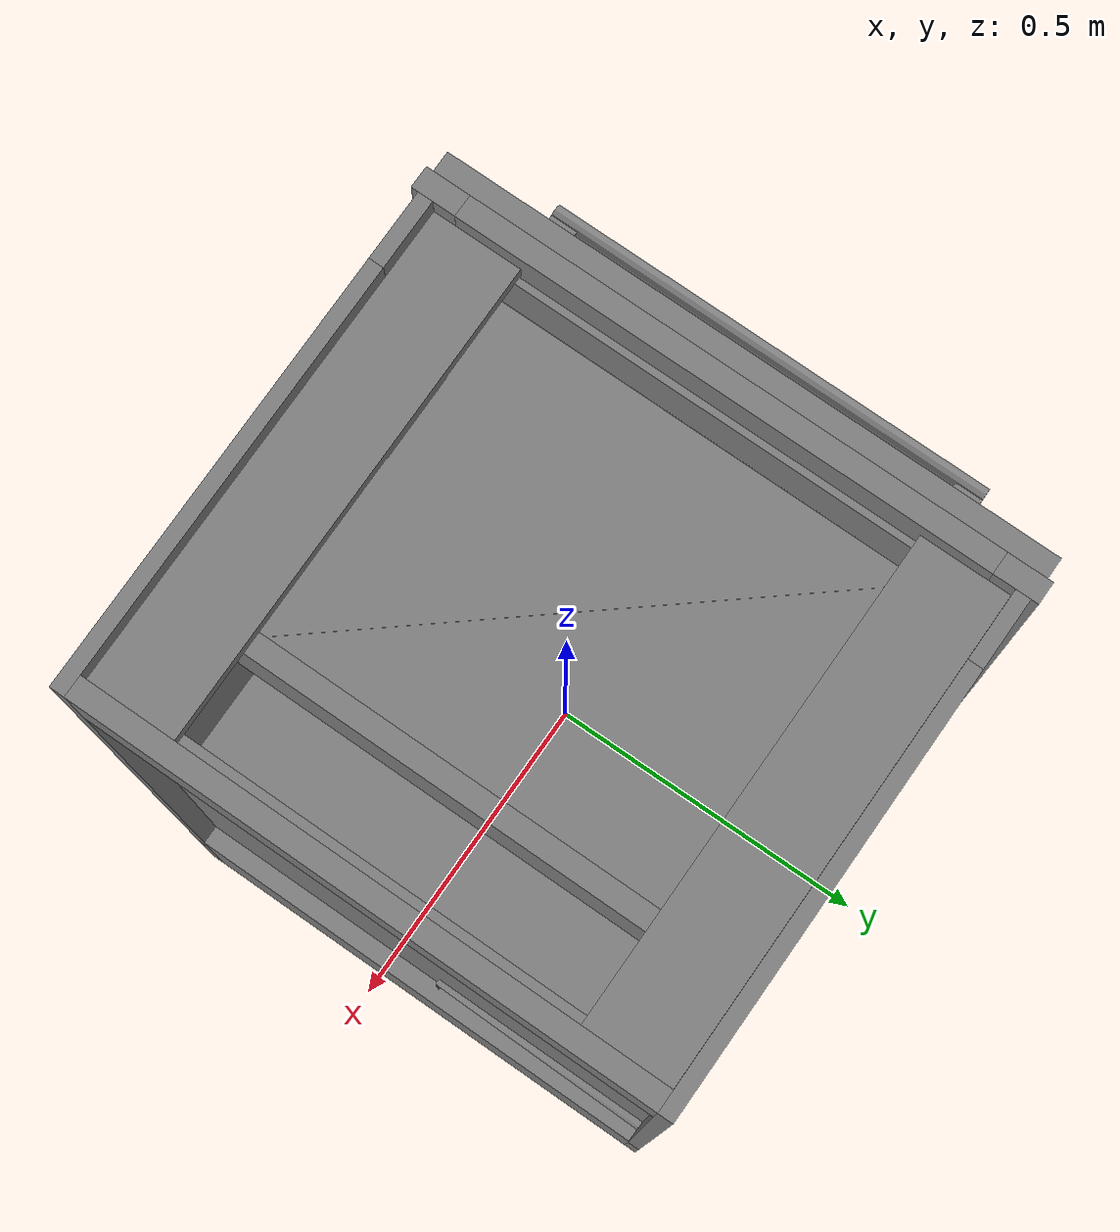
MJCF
<mujoco model="partnet_1700d057c9e0c88cc59350d819542ec7">
    <compiler angle="radian" />
    <size njmax="500" nconmax="100" />
    <asset>
        <mesh name="original-40" file="original-40.stl" />
        <mesh name="original-42" file="original-42.stl" />
        <mesh name="original-44" file="original-44.stl" />
        <mesh name="original-43" file="original-43.stl" />
        <mesh name="original-34" file="original-34.stl" />
        <mesh name="original-26" file="original-26.stl" />
        <mesh name="original-25" file="original-25.stl" />
        <mesh name="original-30" file="original-30.stl" />
        <mesh name="original-31" file="original-31.stl" />
        <mesh name="original-29" file="original-29.stl" />
        <mesh name="original-28" file="original-28.stl" />
        <mesh name="original-36" file="original-36.stl" />
        <mesh name="original-37" file="original-37.stl" />
        <mesh name="original-38" file="original-38.stl" />
        <mesh name="original-32" file="original-32.stl" />
        <mesh name="original-2" file="original-2.stl" />
        <mesh name="original-12" file="original-12.stl" />
        <mesh name="original-11" file="original-11.stl" />
        <mesh name="original-16" file="original-16.stl" />
        <mesh name="original-15" file="original-15.stl" />
        <mesh name="original-6" file="original-6.stl" />
        <mesh name="original-3" file="original-3.stl" />
        <mesh name="original-8" file="original-8.stl" />
        <mesh name="original-4" file="original-4.stl" />
        <mesh name="original-9" file="original-9.stl" />
        <mesh name="original-5" file="original-5.stl" />
        <mesh name="original-22" file="original-22.stl" />
        <mesh name="original-21" file="original-21.stl" />
        <mesh name="original-7" file="original-7.stl" />
        <mesh name="original-18" file="original-18.stl" />
        <mesh name="original-45" file="original-45.stl" />
        <mesh name="original-17" file="original-17.stl" />
        <mesh name="original-19" file="original-19.stl" />
        <mesh name="original-13" file="original-13.stl" />
        <mesh name="original-20" file="original-20.stl" />
    </asset>
    <worldbody>
    <body>
        <body name="object" >
        <geom quat="0.5 0.5 -0.5 -0.5" type="mesh" group="0" mesh="original-2" contype="0" conaffinity="0"/>
        <geom quat="0.5 0.5 -0.5 -0.5" type="mesh" group="0" mesh="original-12" contype="0" conaffinity="0"/>
        <geom quat="0.5 0.5 -0.5 -0.5" type="mesh" group="0" mesh="original-11" contype="0" conaffinity="0"/>
        <geom quat="0.5 0.5 -0.5 -0.5" type="mesh" group="0" mesh="original-16" contype="0" conaffinity="0"/>
        <geom quat="0.5 0.5 -0.5 -0.5" type="mesh" group="0" mesh="original-15" contype="0" conaffinity="0"/>
        <geom quat="0.5 0.5 -0.5 -0.5" type="mesh" group="0" mesh="original-6" contype="0" conaffinity="0"/>
        <geom quat="0.5 0.5 -0.5 -0.5" type="mesh" group="0" mesh="original-3" contype="0" conaffinity="0"/>
        <geom quat="0.5 0.5 -0.5 -0.5" type="mesh" group="0" mesh="original-8" contype="0" conaffinity="0"/>
        <geom quat="0.5 0.5 -0.5 -0.5" type="mesh" group="0" mesh="original-4" contype="0" conaffinity="0"/>
        <geom quat="0.5 0.5 -0.5 -0.5" type="mesh" group="0" mesh="original-9" contype="0" conaffinity="0"/>
        <geom quat="0.5 0.5 -0.5 -0.5" type="mesh" group="0" mesh="original-5" contype="0" conaffinity="0"/>
        <geom quat="0.5 0.5 -0.5 -0.5" type="mesh" group="0" mesh="original-22" contype="0" conaffinity="0"/>
        <geom quat="0.5 0.5 -0.5 -0.5" type="mesh" group="0" mesh="original-21" contype="0" conaffinity="0"/>
        <geom quat="0.5 0.5 -0.5 -0.5" type="mesh" group="0" mesh="original-7" contype="0" conaffinity="0"/>
        <geom quat="0.5 0.5 -0.5 -0.5" type="mesh" group="0" mesh="original-18" contype="0" conaffinity="0"/>
        <geom quat="0.5 0.5 -0.5 -0.5" type="mesh" group="0" mesh="original-45" contype="0" conaffinity="0"/>
        <geom quat="0.5 0.5 -0.5 -0.5" type="mesh" group="0" mesh="original-17" contype="0" conaffinity="0"/>
        <geom quat="0.5 0.5 -0.5 -0.5" type="mesh" group="0" mesh="original-19" contype="0" conaffinity="0"/>
        <geom quat="0.5 0.5 -0.5 -0.5" type="mesh" group="0" mesh="original-13" contype="0" conaffinity="0"/>
        <geom quat="0.5 0.5 -0.5 -0.5" type="mesh" group="0" mesh="original-20" contype="0" conaffinity="0"/>
        <body name="link_1" pos="-0.372191 -0.443201 -0.604165" quat="0.5 0.5 -0.5 -0.5">
            <inertial pos="-0.449629 0.496737 0.00167584" quat="0.491122 0.510479 -0.489807 0.508232" mass="30.3952" diaginertia="4.61613 2.48166 2.14277" />
            <joint name="joint_1" pos="0 0 0" axis="0 1 0" limited="true" range="0 1.5708" />
            <geom pos="-0.443201 0.604165 -0.372191" type="mesh" group="0" mesh="original-40" />
        </body>
        <body name="link_0" pos="0.391025 -0.000891565 0.523875" quat="0.5 0.5 -0.5 -0.5">
            <inertial pos="-0.00289494 0.0164465 0.551665" quat="0.507874 0.491888 0.509314 0.490621" mass="27.7887" diaginertia="3.30203 1.86235 1.63622" />
            <joint name="joint_0" pos="0 0 0" axis="0 0 1" type="slide" limited="true" range="0 0.52" />
            <geom pos="-0.000891565 -0.523875 0.391025" type="mesh" group="0" mesh="original-34" />
            <geom pos="-0.000891565 -0.523875 0.391025" type="mesh" group="0" mesh="original-26" />
            <geom pos="-0.000891565 -0.523875 0.391025" type="mesh" group="0" mesh="original-25" />
            <geom pos="-0.000891565 -0.523875 0.391025" type="mesh" group="0" mesh="original-30" />
            <geom pos="-0.000891565 -0.523875 0.391025" type="mesh" group="0" mesh="original-31" />
            <geom pos="-0.000891565 -0.523875 0.391025" type="mesh" group="0" mesh="original-29" />
            <geom pos="-0.000891565 -0.523875 0.391025" type="mesh" group="0" mesh="original-28" />
            <geom pos="-0.000891565 -0.523875 0.391025" type="mesh" group="0" mesh="original-36" />
            <geom pos="-0.000891565 -0.523875 0.391025" type="mesh" group="0" mesh="original-37" />
            <geom pos="-0.000891565 -0.523875 0.391025" type="mesh" group="0" mesh="original-38" />
            <geom pos="-0.000891565 -0.523875 0.391025" type="mesh" group="0" mesh="original-32" />
        </body>
    </body>
        <site name="bottom_site" pos="0 0 -0.3" rgba="0 0 0 0" size="0.005"/>
        <site name="top_site" pos="0 0 0.3" rgba="0 0 0 0" size="0.005"/>
        <site name="horizontal_radius_site" pos="0.3 0 0" rgba="0 0 0 0" size="0.1"/>
    </body>
    </worldbody>
</mujoco>
